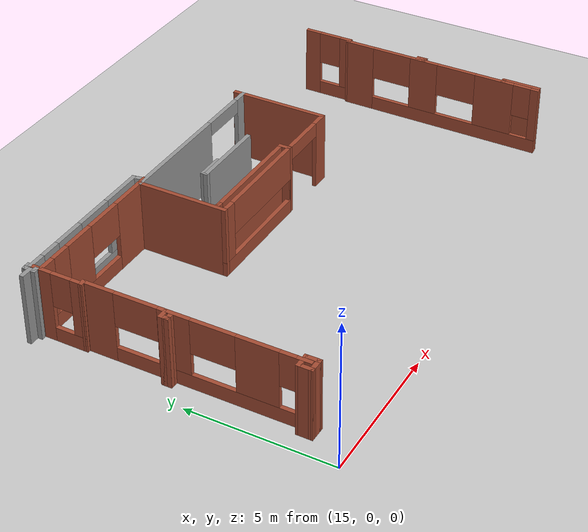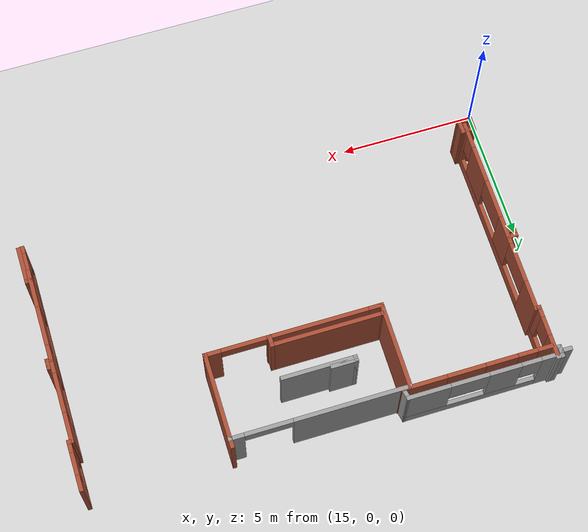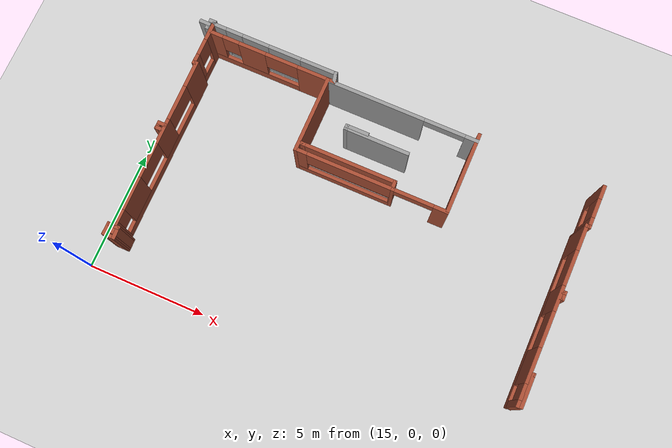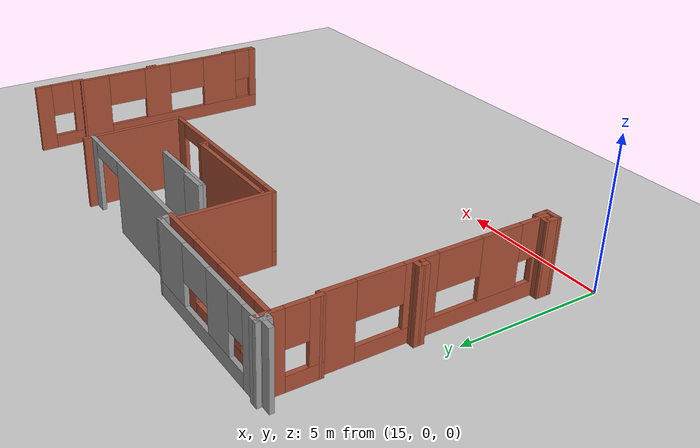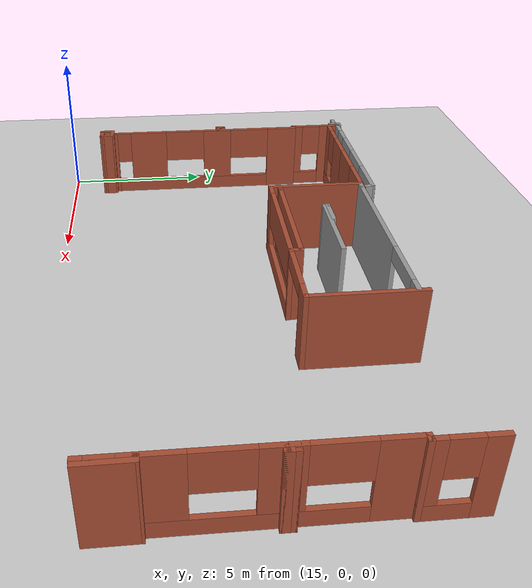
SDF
<sdf version="1.6">
 <world name="default">
  <model name="ground_plane">
   <static>1</static>
   <link name="link">
    <collision name="collision">
     <geometry><plane><normal>0 0 1</normal><size>100 100</size></plane></geometry>
     <surface><friction><ode><mu>100</mu><mu2>50</mu2></ode></friction></surface>
    </collision>
    <visual name="visual">
     <cast_shadows>0</cast_shadows>
     <geometry><plane><normal>0 0 1</normal><size>100 100</size></plane></geometry>
     <material>
      <script><uri>file://media/materials/scripts/gazebo.material</uri><name>Gazebo/Grey</name></script>
     </material>
    </visual>
   </link>
  </model>
  <model name="CVSSP">
   <pose>23.8714 24.094 0 0 -0 0</pose>
   <link name="Wall_179">
    <pose>8.65751 -14.4573 0 0 0 -1.5708</pose>
    <visual name="Wall_179_Visual_0">
     <pose>-0.628809 0 1.25 0 -0 0</pose>
     <geometry><box><size>0.582411 0.15 2.5</size></box></geometry>
     <material>
      <script><uri>file://media/materials/scripts/gazebo.material</uri><name>Gazebo/Bricks</name></script>
      <ambient>1 1 1 1</ambient>
     </material>
    </visual>
    <collision name="Wall_179_Collision_0">
     <geometry><box><size>0.582411 0.15 2.5</size></box></geometry>
     <pose>-0.628809 0 1.25 0 -0 0</pose>
    </collision>
    <visual name="Wall_179_Visual_1">
     <pose>0.291205 0 0.25 0 -0 0</pose>
     <geometry><box><size>1.25762 0.15 0.5</size></box></geometry>
     <material>
      <script><uri>file://media/materials/scripts/gazebo.material</uri><name>Gazebo/Bricks</name></script>
      <ambient>1 1 1 1</ambient>
     </material>
    </visual>
    <collision name="Wall_179_Collision_1">
     <geometry><box><size>1.25762 0.15 0.5</size></box></geometry>
     <pose>0.291205 0 0.25 0 -0 0</pose>
    </collision>
    <visual name="Wall_179_Visual_2">
     <pose>0.691205 0 1.5 0 -0 0</pose>
     <geometry><box><size>0.457619 0.15 2</size></box></geometry>
     <material>
      <script><uri>file://media/materials/scripts/gazebo.material</uri><name>Gazebo/Bricks</name></script>
      <ambient>1 1 1 1</ambient>
     </material>
    </visual>
    <collision name="Wall_179_Collision_2">
     <geometry><box><size>0.457619 0.15 2</size></box></geometry>
     <pose>0.691205 0 1.5 0 -0 0</pose>
    </collision>
    <visual name="Wall_179_Visual_3">
     <pose>0.062396 0 1.9 0 -0 0</pose>
     <geometry><box><size>0.8 0.15 1.2</size></box></geometry>
     <material>
      <script><uri>file://media/materials/scripts/gazebo.material</uri><name>Gazebo/Bricks</name></script>
      <ambient>1 1 1 1</ambient>
     </material>
    </visual>
    <collision name="Wall_179_Collision_3">
     <geometry><box><size>0.8 0.15 1.2</size></box></geometry>
     <pose>0.062396 0 1.9 0 -0 0</pose>
    </collision>
   </link>
   <link name="Wall_181">
    <collision name="Wall_181_Collision">
     <geometry><box><size>0.25 0.15 2.5</size></box></geometry>
     <pose>0 0 1.25 0 -0 0</pose>
    </collision>
    <visual name="Wall_181_Visual">
     <pose>0 0 1.25 0 -0 0</pose>
     <geometry><box><size>0.25 0.15 2.5</size></box></geometry>
     <material>
      <script><uri>file://media/materials/scripts/gazebo.material</uri><name>Gazebo/Bricks</name></script>
      <ambient>1 1 1 1</ambient>
     </material>
    </visual>
    <pose>8.60751 -15.3023 0 0 -0 3.14159</pose>
   </link>
   <link name="Wall_182">
    <pose>8.54751 -18.9623 0 0 0 -1.57353</pose>
    <visual name="Wall_182_Visual_0">
     <pose>-3.1752 0 1.25 0 -0 0</pose>
     <geometry><box><size>1.11963 0.15 2.5</size></box></geometry>
     <material>
      <script><uri>file://media/materials/scripts/gazebo.material</uri><name>Gazebo/Bricks</name></script>
      <ambient>1 1 1 1</ambient>
     </material>
    </visual>
    <collision name="Wall_182_Collision_0">
     <geometry><box><size>1.11963 0.15 2.5</size></box></geometry>
     <pose>-3.1752 0 1.25 0 -0 0</pose>
    </collision>
    <visual name="Wall_182_Visual_1">
     <pose>0.559815 0 0.25 0 -0 0</pose>
     <geometry><box><size>6.3504 0.15 0.5</size></box></geometry>
     <material>
      <script><uri>file://media/materials/scripts/gazebo.material</uri><name>Gazebo/Bricks</name></script>
      <ambient>1 1 1 1</ambient>
     </material>
    </visual>
    <collision name="Wall_182_Collision_1">
     <geometry><box><size>6.3504 0.15 0.5</size></box></geometry>
     <pose>0.559815 0 0.25 0 -0 0</pose>
    </collision>
    <visual name="Wall_182_Visual_2">
     <pose>-0.626161 0 1.5 0 -0 0</pose>
     <geometry><box><size>1.05351 0.15 2</size></box></geometry>
     <material>
      <script><uri>file://media/materials/scripts/gazebo.material</uri><name>Gazebo/Bricks</name></script>
      <ambient>1 1 1 1</ambient>
     </material>
    </visual>
    <collision name="Wall_182_Collision_2">
     <geometry><box><size>1.05351 0.15 2</size></box></geometry>
     <pose>-0.626161 0 1.5 0 -0 0</pose>
    </collision>
    <visual name="Wall_182_Visual_3">
     <pose>2.08039 0 1.5 0 -0 0</pose>
     <geometry><box><size>1.44149 0.15 2</size></box></geometry>
     <material>
      <script><uri>file://media/materials/scripts/gazebo.material</uri><name>Gazebo/Bricks</name></script>
      <ambient>1 1 1 1</ambient>
     </material>
    </visual>
    <collision name="Wall_182_Collision_3">
     <geometry><box><size>1.44149 0.15 2</size></box></geometry>
     <pose>2.08039 0 1.5 0 -0 0</pose>
    </collision>
    <visual name="Wall_182_Visual_4">
     <pose>3.58898 0 1.5 0 -0 0</pose>
     <geometry><box><size>0.292074 0.15 2</size></box></geometry>
     <material>
      <script><uri>file://media/materials/scripts/gazebo.material</uri><name>Gazebo/Bricks</name></script>
      <ambient>1 1 1 1</ambient>
     </material>
    </visual>
    <collision name="Wall_182_Collision_4">
     <geometry><box><size>0.292074 0.15 2</size></box></geometry>
     <pose>3.58898 0 1.5 0 -0 0</pose>
    </collision>
    <visual name="Wall_182_Visual_5">
     <pose>-1.88415 0 1.9 0 -0 0</pose>
     <geometry><box><size>1.46246 0.15 1.2</size></box></geometry>
     <material>
      <script><uri>file://media/materials/scripts/gazebo.material</uri><name>Gazebo/Bricks</name></script>
      <ambient>1 1 1 1</ambient>
     </material>
    </visual>
    <collision name="Wall_182_Collision_5">
     <geometry><box><size>1.46246 0.15 1.2</size></box></geometry>
     <pose>-1.88415 0 1.9 0 -0 0</pose>
    </collision>
    <visual name="Wall_182_Visual_6">
     <pose>0.63012 0 1.9 0 -0 0</pose>
     <geometry><box><size>1.45905 0.15 1.2</size></box></geometry>
     <material>
      <script><uri>file://media/materials/scripts/gazebo.material</uri><name>Gazebo/Bricks</name></script>
      <ambient>1 1 1 1</ambient>
     </material>
    </visual>
    <collision name="Wall_182_Collision_6">
     <geometry><box><size>1.45905 0.15 1.2</size></box></geometry>
     <pose>0.63012 0 1.9 0 -0 0</pose>
    </collision>
    <visual name="Wall_182_Visual_7">
     <pose>3.12204 0 1.9 0 -0 0</pose>
     <geometry><box><size>0.641802 0.15 1.2</size></box></geometry>
     <material>
      <script><uri>file://media/materials/scripts/gazebo.material</uri><name>Gazebo/Bricks</name></script>
      <ambient>1 1 1 1</ambient>
     </material>
    </visual>
    <collision name="Wall_182_Collision_7">
     <geometry><box><size>0.641802 0.15 1.2</size></box></geometry>
     <pose>3.12204 0 1.9 0 -0 0</pose>
    </collision>
   </link>
   <link name="Wall_191">
    <collision name="Wall_191_Collision">
     <geometry><box><size>0.25 0.15 2.5</size></box></geometry>
     <pose>0 0 1.25 0 -0 0</pose>
    </collision>
    <visual name="Wall_191_Visual">
     <pose>0 0 1.25 0 -0 0</pose>
     <geometry><box><size>0.25 0.15 2.5</size></box></geometry>
     <material>
      <script><uri>file://media/materials/scripts/gazebo.material</uri><name>Gazebo/Bricks</name></script>
      <ambient>1 1 1 1</ambient>
     </material>
    </visual>
    <pose>8.62063 -21.3528 0 0 -0 0</pose>
   </link>
   <link name="Wall_192">
    <collision name="Wall_192_Collision">
     <geometry><box><size>1.40351 0.15 2.5</size></box></geometry>
     <pose>0 0 1.25 0 -0 0</pose>
    </collision>
    <visual name="Wall_192_Visual">
     <pose>0 0 1.25 0 -0 0</pose>
     <geometry><box><size>1.40351 0.15 2.5</size></box></geometry>
     <material>
      <script><uri>file://media/materials/scripts/gazebo.material</uri><name>Gazebo/Bricks</name></script>
      <ambient>1 1 1 1</ambient>
     </material>
    </visual>
    <pose>8.67238 -21.9795 0 0 0 -1.568</pose>
   </link>
   <link name="Wall_505">
    <collision name="Wall_505_Collision">
     <geometry><box><size>3.5 0.15 2.5</size></box></geometry>
     <pose>0 0 1.25 0 -0 0</pose>
    </collision>
    <visual name="Wall_505_Visual">
     <pose>0 0 1.25 0 -0 0</pose>
     <geometry><box><size>3.5 0.15 2.5</size></box></geometry>
     <material>
      <script><uri>file://media/materials/scripts/gazebo.material</uri><name>Gazebo/Bricks</name></script>
      <ambient>1 1 1 1</ambient>
     </material>
    </visual>
    <pose>3.47947 -15.2523 0 0 0 -1.5708</pose>
   </link>
   <link name="Wall_506">
    <pose>0.304469 -16.9273 0 0 -0 3.14159</pose>
    <visual name="Wall_506_Visual_0">
     <pose>-2.93094 0 1.25 0 -0 0</pose>
     <geometry><box><size>0.638116 0.15 2.5</size></box></geometry>
     <material>
      <script><uri>file://media/materials/scripts/gazebo.material</uri><name>Gazebo/Bricks</name></script>
      <ambient>1 1 1 1</ambient>
     </material>
    </visual>
    <collision name="Wall_506_Collision_0">
     <geometry><box><size>0.638116 0.15 2.5</size></box></geometry>
     <pose>-2.93094 0 1.25 0 -0 0</pose>
    </collision>
    <visual name="Wall_506_Visual_1">
     <pose>-0.912696 0 1.25 0 -0 0</pose>
     <geometry><box><size>0.137507 0.15 2.5</size></box></geometry>
     <material>
      <script><uri>file://media/materials/scripts/gazebo.material</uri><name>Gazebo/Bricks</name></script>
      <ambient>1 1 1 1</ambient>
     </material>
    </visual>
    <collision name="Wall_506_Collision_1">
     <geometry><box><size>0.137507 0.15 2.5</size></box></geometry>
     <pose>-0.912696 0 1.25 0 -0 0</pose>
    </collision>
    <visual name="Wall_506_Visual_2">
     <pose>1.20303 0 0.25 0 -0 0</pose>
     <geometry><box><size>4.09394 0.15 0.5</size></box></geometry>
     <material>
      <script><uri>file://media/materials/scripts/gazebo.material</uri><name>Gazebo/Bricks</name></script>
      <ambient>1 1 1 1</ambient>
     </material>
    </visual>
    <collision name="Wall_506_Collision_2">
     <geometry><box><size>4.09394 0.15 0.5</size></box></geometry>
     <pose>1.20303 0 0.25 0 -0 0</pose>
    </collision>
    <visual name="Wall_506_Visual_3">
     <pose>2.97461 0 1.5 0 -0 0</pose>
     <geometry><box><size>0.550785 0.15 2</size></box></geometry>
     <material>
      <script><uri>file://media/materials/scripts/gazebo.material</uri><name>Gazebo/Bricks</name></script>
      <ambient>1 1 1 1</ambient>
     </material>
    </visual>
    <collision name="Wall_506_Collision_3">
     <geometry><box><size>0.550785 0.15 2</size></box></geometry>
     <pose>2.97461 0 1.5 0 -0 0</pose>
    </collision>
    <visual name="Wall_506_Visual_4">
     <pose>0.927636 0 1.9 0 -0 0</pose>
     <geometry><box><size>3.54316 0.15 1.2</size></box></geometry>
     <material>
      <script><uri>file://media/materials/scripts/gazebo.material</uri><name>Gazebo/Bricks</name></script>
      <ambient>1 1 1 1</ambient>
     </material>
    </visual>
    <collision name="Wall_506_Collision_4">
     <geometry><box><size>3.54316 0.15 1.2</size></box></geometry>
     <pose>0.927636 0 1.9 0 -0 0</pose>
    </collision>
    <visual name="Wall_506_Visual_5">
     <pose>-1.79667 0 2.25 0 -0 0</pose>
     <geometry><box><size>1.63044 0.15 0.5</size></box></geometry>
     <material>
      <script><uri>file://media/materials/scripts/gazebo.material</uri><name>Gazebo/Bricks</name></script>
      <ambient>1 1 1 1</ambient>
     </material>
    </visual>
    <collision name="Wall_506_Collision_5">
     <geometry><box><size>1.63044 0.15 0.5</size></box></geometry>
     <pose>-1.79667 0 2.25 0 -0 0</pose>
    </collision>
   </link>
   <link name="Wall_507">
    <collision name="Wall_507_Collision">
     <geometry><box><size>3.25 0.15 2.5</size></box></geometry>
     <pose>0 0 1.25 0 -0 0</pose>
    </collision>
    <visual name="Wall_507_Visual">
     <pose>0 0 1.25 0 -0 0</pose>
     <geometry><box><size>3.25 0.15 2.5</size></box></geometry>
     <material>
      <script><uri>file://media/materials/scripts/gazebo.material</uri><name>Gazebo/Bricks</name></script>
      <ambient>1 1 1 1</ambient>
     </material>
    </visual>
    <pose>-2.87053 -15.3773 0 0 -0 1.5708</pose>
   </link>
   <link name="Wall_508">
    <pose>0.304469 -13.8405 0 0 -0 0</pose>
    <visual name="Wall_508_Visual_0">
     <pose>-1.14297 0 1.25 0 -0 0</pose>
     <geometry><box><size>4.21406 0.15 2.5</size></box></geometry>
     <material>
      <script><uri>file://media/materials/scripts/gazebo.material</uri><name>Gazebo/Grey</name></script>
      <ambient>0.588235 0.588235 0.588235 1</ambient>
     </material>
    </visual>
    <collision name="Wall_508_Collision_0">
     <geometry><box><size>4.21406 0.15 2.5</size></box></geometry>
     <pose>-1.14297 0 1.25 0 -0 0</pose>
    </collision>
    <visual name="Wall_508_Visual_1">
     <pose>2.96572 0 1.25 0 -0 0</pose>
     <geometry><box><size>0.56855 0.15 2.5</size></box></geometry>
     <material>
      <script><uri>file://media/materials/scripts/gazebo.material</uri><name>Gazebo/Grey</name></script>
      <ambient>0.588235 0.588235 0.588235 1</ambient>
     </material>
    </visual>
    <collision name="Wall_508_Collision_1">
     <geometry><box><size>0.56855 0.15 2.5</size></box></geometry>
     <pose>2.96572 0 1.25 0 -0 0</pose>
    </collision>
    <visual name="Wall_508_Visual_2">
     <pose>1.82275 0 2.25 0 -0 0</pose>
     <geometry><box><size>1.71739 0.15 0.5</size></box></geometry>
     <material>
      <script><uri>file://media/materials/scripts/gazebo.material</uri><name>Gazebo/Grey</name></script>
      <ambient>0.588235 0.588235 0.588235 1</ambient>
     </material>
    </visual>
    <collision name="Wall_508_Collision_2">
     <geometry><box><size>1.71739 0.15 0.5</size></box></geometry>
     <pose>1.82275 0 2.25 0 -0 0</pose>
    </collision>
   </link>
   <link name="Wall_538">
    <pose>-5.361 -13.4582 0 0 -0 0</pose>
    <visual name="Wall_538_Visual_0">
     <pose>-2.43267 0 1.25 0 -0 0</pose>
     <geometry><box><size>0.634665 0.15 2.5</size></box></geometry>
     <material>
      <script><uri>file://media/materials/scripts/gazebo.material</uri><name>Gazebo/Grey</name></script>
      <ambient>0.588235 0.588235 0.588235 1</ambient>
     </material>
    </visual>
    <collision name="Wall_538_Collision_0">
     <geometry><box><size>0.634665 0.15 2.5</size></box></geometry>
     <pose>-2.43267 0 1.25 0 -0 0</pose>
    </collision>
    <visual name="Wall_538_Visual_1">
     <pose>0.317332 0 0.25 0 -0 0</pose>
     <geometry><box><size>4.86533 0.15 0.5</size></box></geometry>
     <material>
      <script><uri>file://media/materials/scripts/gazebo.material</uri><name>Gazebo/Grey</name></script>
      <ambient>0.588235 0.588235 0.588235 1</ambient>
     </material>
    </visual>
    <collision name="Wall_538_Collision_1">
     <geometry><box><size>4.86533 0.15 0.5</size></box></geometry>
     <pose>0.317332 0 0.25 0 -0 0</pose>
    </collision>
    <visual name="Wall_538_Visual_2">
     <pose>-0.810818 0 1.5 0 -0 0</pose>
     <geometry><box><size>1.15893 0.15 2</size></box></geometry>
     <material>
      <script><uri>file://media/materials/scripts/gazebo.material</uri><name>Gazebo/Grey</name></script>
      <ambient>0.588235 0.588235 0.588235 1</ambient>
     </material>
    </visual>
    <collision name="Wall_538_Collision_2">
     <geometry><box><size>1.15893 0.15 2</size></box></geometry>
     <pose>-0.810818 0 1.5 0 -0 0</pose>
    </collision>
    <visual name="Wall_538_Visual_3">
     <pose>1.95518 0 1.5 0 -0 0</pose>
     <geometry><box><size>1.58965 0.15 2</size></box></geometry>
     <material>
      <script><uri>file://media/materials/scripts/gazebo.material</uri><name>Gazebo/Grey</name></script>
      <ambient>0.588235 0.588235 0.588235 1</ambient>
     </material>
    </visual>
    <collision name="Wall_538_Collision_3">
     <geometry><box><size>1.58965 0.15 2</size></box></geometry>
     <pose>1.95518 0 1.5 0 -0 0</pose>
    </collision>
    <visual name="Wall_538_Visual_4">
     <pose>-1.75281 0 1.9 0 -0 0</pose>
     <geometry><box><size>0.72505 0.15 1.2</size></box></geometry>
     <material>
      <script><uri>file://media/materials/scripts/gazebo.material</uri><name>Gazebo/Grey</name></script>
      <ambient>0.588235 0.588235 0.588235 1</ambient>
     </material>
    </visual>
    <collision name="Wall_538_Collision_4">
     <geometry><box><size>0.72505 0.15 1.2</size></box></geometry>
     <pose>-1.75281 0 1.9 0 -0 0</pose>
    </collision>
    <visual name="Wall_538_Visual_5">
     <pose>0.4645 0 1.9 0 -0 0</pose>
     <geometry><box><size>1.3917 0.15 1.2</size></box></geometry>
     <material>
      <script><uri>file://media/materials/scripts/gazebo.material</uri><name>Gazebo/Grey</name></script>
      <ambient>0.588235 0.588235 0.588235 1</ambient>
     </material>
    </visual>
    <collision name="Wall_538_Collision_5">
     <geometry><box><size>1.3917 0.15 1.2</size></box></geometry>
     <pose>0.4645 0 1.9 0 -0 0</pose>
    </collision>
   </link>
   <link name="Wall_539">
    <collision name="Wall_539_Collision">
     <geometry><box><size>0.505851 0.15 2.5</size></box></geometry>
     <pose>0 0 1.25 0 -0 0</pose>
    </collision>
    <visual name="Wall_539_Visual">
     <pose>0 0 1.25 0 -0 0</pose>
     <geometry><box><size>0.505851 0.15 2.5</size></box></geometry>
     <material>
      <script><uri>file://media/materials/scripts/gazebo.material</uri><name>Gazebo/Grey</name></script>
      <ambient>1 1 1 1</ambient>
     </material>
    </visual>
    <pose>-2.64978 -13.6324 0 0 0 -1.3658</pose>
   </link>
   <link name="Wall_541">
    <pose>-8.03948 -14.3557 0 0 0 -1.57468</pose>
    <visual name="Wall_541_Visual_0">
     <pose>-0.567331 0 1.25 0 -0 0</pose>
     <geometry><box><size>0.810426 0.15 2.5</size></box></geometry>
     <material>
      <script><uri>file://media/materials/scripts/gazebo.material</uri><name>Gazebo/Bricks</name></script>
      <ambient>1 1 1 1</ambient>
     </material>
    </visual>
    <collision name="Wall_541_Collision_0">
     <geometry><box><size>0.810426 0.15 2.5</size></box></geometry>
     <pose>-0.567331 0 1.25 0 -0 0</pose>
    </collision>
    <visual name="Wall_541_Visual_1">
     <pose>0.405213 0 0.25 0 -0 0</pose>
     <geometry><box><size>1.13466 0.15 0.5</size></box></geometry>
     <material>
      <script><uri>file://media/materials/scripts/gazebo.material</uri><name>Gazebo/Bricks</name></script>
      <ambient>1 1 1 1</ambient>
     </material>
    </visual>
    <collision name="Wall_541_Collision_1">
     <geometry><box><size>1.13466 0.15 0.5</size></box></geometry>
     <pose>0.405213 0 0.25 0 -0 0</pose>
    </collision>
    <visual name="Wall_541_Visual_2">
     <pose>0.750947 0 1.5 0 -0 0</pose>
     <geometry><box><size>0.443194 0.15 2</size></box></geometry>
     <material>
      <script><uri>file://media/materials/scripts/gazebo.material</uri><name>Gazebo/Bricks</name></script>
      <ambient>1 1 1 1</ambient>
     </material>
    </visual>
    <collision name="Wall_541_Collision_2">
     <geometry><box><size>0.443194 0.15 2</size></box></geometry>
     <pose>0.750947 0 1.5 0 -0 0</pose>
    </collision>
    <visual name="Wall_541_Visual_3">
     <pose>0.183616 0 1.9 0 -0 0</pose>
     <geometry><box><size>0.691468 0.15 1.2</size></box></geometry>
     <material>
      <script><uri>file://media/materials/scripts/gazebo.material</uri><name>Gazebo/Bricks</name></script>
      <ambient>1 1 1 1</ambient>
     </material>
    </visual>
    <collision name="Wall_541_Collision_3">
     <geometry><box><size>0.691468 0.15 1.2</size></box></geometry>
     <pose>0.183616 0 1.9 0 -0 0</pose>
    </collision>
   </link>
   <link name="Wall_542">
    <collision name="Wall_542_Collision">
     <geometry><box><size>0.25 0.15 2.5</size></box></geometry>
     <pose>0 0 1.25 0 -0 0</pose>
    </collision>
    <visual name="Wall_542_Visual">
     <pose>0 0 1.25 0 -0 0</pose>
     <geometry><box><size>0.25 0.15 2.5</size></box></geometry>
     <material>
      <script><uri>file://media/materials/scripts/gazebo.material</uri><name>Gazebo/Bricks</name></script>
      <ambient>1 1 1 1</ambient>
     </material>
    </visual>
    <pose>-7.99297 -15.2533 0 0 -0 0</pose>
   </link>
   <link name="Wall_543">
    <pose>-7.94297 -18.8033 0 0 0 -1.5708</pose>
    <visual name="Wall_543_Visual_0">
     <pose>-3.05686 0 1.25 0 -0 0</pose>
     <geometry><box><size>1.13628 0.15 2.5</size></box></geometry>
     <material>
      <script><uri>file://media/materials/scripts/gazebo.material</uri><name>Gazebo/Bricks</name></script>
      <ambient>1 1 1 1</ambient>
     </material>
    </visual>
    <collision name="Wall_543_Collision_0">
     <geometry><box><size>1.13628 0.15 2.5</size></box></geometry>
     <pose>-3.05686 0 1.25 0 -0 0</pose>
    </collision>
    <visual name="Wall_543_Visual_1">
     <pose>0.568139 0 0.25 0 -0 0</pose>
     <geometry><box><size>6.11372 0.15 0.5</size></box></geometry>
     <material>
      <script><uri>file://media/materials/scripts/gazebo.material</uri><name>Gazebo/Bricks</name></script>
      <ambient>1 1 1 1</ambient>
     </material>
    </visual>
    <collision name="Wall_543_Collision_1">
     <geometry><box><size>6.11372 0.15 0.5</size></box></geometry>
     <pose>0.568139 0 0.25 0 -0 0</pose>
    </collision>
    <visual name="Wall_543_Visual_2">
     <pose>-0.462946 0 1.5 0 -0 0</pose>
     <geometry><box><size>1.07655 0.15 2</size></box></geometry>
     <material>
      <script><uri>file://media/materials/scripts/gazebo.material</uri><name>Gazebo/Bricks</name></script>
      <ambient>1 1 1 1</ambient>
     </material>
    </visual>
    <collision name="Wall_543_Collision_2">
     <geometry><box><size>1.07655 0.15 2</size></box></geometry>
     <pose>-0.462946 0 1.5 0 -0 0</pose>
    </collision>
    <visual name="Wall_543_Visual_3">
     <pose>2.25573 0 1.5 0 -0 0</pose>
     <geometry><box><size>1.39706 0.15 2</size></box></geometry>
     <material>
      <script><uri>file://media/materials/scripts/gazebo.material</uri><name>Gazebo/Bricks</name></script>
      <ambient>1 1 1 1</ambient>
     </material>
    </visual>
    <collision name="Wall_543_Collision_3">
     <geometry><box><size>1.39706 0.15 2</size></box></geometry>
     <pose>2.25573 0 1.5 0 -0 0</pose>
    </collision>
    <visual name="Wall_543_Visual_4">
     <pose>2.25573 0 1.5 0 -0 0</pose>
     <geometry><box><size>1.39706 0.15 2</size></box></geometry>
     <material>
      <script><uri>file://media/materials/scripts/gazebo.material</uri><name>Gazebo/Bricks</name></script>
      <ambient>1 1 1 1</ambient>
     </material>
    </visual>
    <collision name="Wall_543_Collision_4">
     <geometry><box><size>1.39706 0.15 2</size></box></geometry>
     <pose>2.25573 0 1.5 0 -0 0</pose>
    </collision>
    <visual name="Wall_543_Visual_5">
     <pose>-1.74497 0 1.9 0 -0 0</pose>
     <geometry><box><size>1.4875 0.15 1.2</size></box></geometry>
     <material>
      <script><uri>file://media/materials/scripts/gazebo.material</uri><name>Gazebo/Bricks</name></script>
      <ambient>1 1 1 1</ambient>
     </material>
    </visual>
    <collision name="Wall_543_Collision_5">
     <geometry><box><size>1.4875 0.15 1.2</size></box></geometry>
     <pose>-1.74497 0 1.9 0 -0 0</pose>
    </collision>
    <visual name="Wall_543_Visual_6">
     <pose>0.816261 0 1.9 0 -0 0</pose>
     <geometry><box><size>1.48187 0.15 1.2</size></box></geometry>
     <material>
      <script><uri>file://media/materials/scripts/gazebo.material</uri><name>Gazebo/Bricks</name></script>
      <ambient>1 1 1 1</ambient>
     </material>
    </visual>
    <collision name="Wall_543_Collision_6">
     <geometry><box><size>1.48187 0.15 1.2</size></box></geometry>
     <pose>0.816261 0 1.9 0 -0 0</pose>
    </collision>
    <visual name="Wall_543_Visual_7">
     <pose>3.28963 0 1.9 0 -0 0</pose>
     <geometry><box><size>0.670742 0.15 1.2</size></box></geometry>
     <material>
      <script><uri>file://media/materials/scripts/gazebo.material</uri><name>Gazebo/Bricks</name></script>
      <ambient>1 1 1 1</ambient>
     </material>
    </visual>
    <collision name="Wall_543_Collision_7">
     <geometry><box><size>0.670742 0.15 1.2</size></box></geometry>
     <pose>3.28963 0 1.9 0 -0 0</pose>
    </collision>
    <visual name="Wall_543_Visual_8">
     <pose>3.28963 0 1.9 0 -0 0</pose>
     <geometry><box><size>0.670742 0.15 1.2</size></box></geometry>
     <material>
      <script><uri>file://media/materials/scripts/gazebo.material</uri><name>Gazebo/Bricks</name></script>
      <ambient>1 1 1 1</ambient>
     </material>
    </visual>
    <collision name="Wall_543_Collision_8">
     <geometry><box><size>0.670742 0.15 1.2</size></box></geometry>
     <pose>3.28963 0 1.9 0 -0 0</pose>
    </collision>
   </link>
   <link name="Wall_544">
    <collision name="Wall_544_Collision">
     <geometry><box><size>0.5 0.15 2.5</size></box></geometry>
     <pose>0 0 1.25 0 -0 0</pose>
    </collision>
    <visual name="Wall_544_Visual">
     <pose>0 0 1.25 0 -0 0</pose>
     <geometry><box><size>0.5 0.15 2.5</size></box></geometry>
     <material>
      <script><uri>file://media/materials/scripts/gazebo.material</uri><name>Gazebo/Bricks</name></script>
      <ambient>1 1 1 1</ambient>
     </material>
    </visual>
    <pose>-7.94297 -22.5283 0 0 0 -1.5708</pose>
   </link>
   <link name="Wall_569">
    <collision name="Wall_569_Collision">
     <geometry><box><size>0.476583 0.15 2.5</size></box></geometry>
     <pose>0 0 1.25 0 -0 0</pose>
    </collision>
    <visual name="Wall_569_Visual">
     <pose>0 0 1.25 0 -0 0</pose>
     <geometry><box><size>0.476583 0.15 2.5</size></box></geometry>
     <material>
      <script><uri>file://media/materials/scripts/gazebo.material</uri><name>Gazebo/Grey</name></script>
      <ambient>1 1 1 1</ambient>
     </material>
    </visual>
    <pose>-8.37248 -13.54 0 0 0 -0.014239</pose>
   </link>
   <link name="Wall_570">
    <collision name="Wall_570_Collision">
     <geometry><box><size>0.307067 0.15 2.5</size></box></geometry>
     <pose>0 0 1.25 0 -0 0</pose>
    </collision>
    <visual name="Wall_570_Visual">
     <pose>0 0 1.25 0 -0 0</pose>
     <geometry><box><size>0.307067 0.15 2.5</size></box></geometry>
     <material>
      <script><uri>file://media/materials/scripts/gazebo.material</uri><name>Gazebo/Grey</name></script>
      <ambient>1 1 1 1</ambient>
     </material>
    </visual>
    <pose>-8.20921 -13.6208 0 0 0 -1.5708</pose>
   </link>
   <link name="Wall_571">
    <collision name="Wall_571_Collision">
     <geometry><box><size>0.25 0.15 2.5</size></box></geometry>
     <pose>0 0 1.25 0 -0 0</pose>
    </collision>
    <visual name="Wall_571_Visual">
     <pose>0 0 1.25 0 -0 0</pose>
     <geometry><box><size>0.25 0.15 2.5</size></box></geometry>
     <material>
      <script><uri>file://media/materials/scripts/gazebo.material</uri><name>Gazebo/Grey</name></script>
      <ambient>1 1 1 1</ambient>
     </material>
    </visual>
    <pose>-8.15921 -13.695 0 0 -0 0</pose>
   </link>
   <link name="Wall_575">
    <collision name="Wall_575_Collision">
     <geometry><box><size>0.275673 0.15 2.5</size></box></geometry>
     <pose>0 0 1.25 0 -0 0</pose>
    </collision>
    <visual name="Wall_575_Visual">
     <pose>0 0 1.25 0 -0 0</pose>
     <geometry><box><size>0.275673 0.15 2.5</size></box></geometry>
     <material>
      <script><uri>file://media/materials/scripts/gazebo.material</uri><name>Gazebo/Grey</name></script>
      <ambient>1 1 1 1</ambient>
     </material>
    </visual>
    <pose>-8.20032 -13.4387 0 0 -0 1.5708</pose>
   </link>
   <link name="Wall_576">
    <collision name="Wall_576_Collision">
     <geometry><box><size>0.309961 0.15 2.5</size></box></geometry>
     <pose>0 0 1.25 0 -0 0</pose>
    </collision>
    <visual name="Wall_576_Visual">
     <pose>0 0 1.25 0 -0 0</pose>
     <geometry><box><size>0.309961 0.15 2.5</size></box></geometry>
     <material>
      <script><uri>file://media/materials/scripts/gazebo.material</uri><name>Gazebo/Grey</name></script>
      <ambient>1 1 1 1</ambient>
     </material>
    </visual>
    <pose>-8.12034 -13.3761 0 0 -0 0</pose>
   </link>
   <link name="Wall_596">
    <collision name="Wall_596_Collision">
     <geometry><box><size>4 0.15 2.5</size></box></geometry>
     <pose>0 0 1.25 0 -0 0</pose>
    </collision>
    <visual name="Wall_596_Visual">
     <pose>0 0 1.25 0 -0 0</pose>
     <geometry><box><size>4 0.15 2.5</size></box></geometry>
     <material>
      <script><uri>file://media/materials/scripts/gazebo.material</uri><name>Gazebo/Bricks</name></script>
      <ambient>1 1 1 1</ambient>
     </material>
    </visual>
    <pose>-0.740764 -16.6286 0 0 -0 0</pose>
   </link>
   <link name="Wall_598">
    <collision name="Wall_598_Collision">
     <geometry><box><size>0.429619 0.15 2.5</size></box></geometry>
     <pose>0 0 1.25 0 -0 0</pose>
    </collision>
    <visual name="Wall_598_Visual">
     <pose>0 0 1.25 0 -0 0</pose>
     <geometry><box><size>0.429619 0.15 2.5</size></box></geometry>
     <material>
      <script><uri>file://media/materials/scripts/gazebo.material</uri><name>Gazebo/Bricks</name></script>
      <ambient>1 1 1 1</ambient>
     </material>
    </visual>
    <pose>1.18424 -16.7682 0 0 0 -1.5708</pose>
   </link>
   <link name="Wall_600">
    <collision name="Wall_600_Collision">
     <geometry><box><size>2.75 0.15 2.5</size></box></geometry>
     <pose>0 0 1.25 0 -0 0</pose>
    </collision>
    <visual name="Wall_600_Visual">
     <pose>0 0 1.25 0 -0 0</pose>
     <geometry><box><size>2.75 0.15 2.5</size></box></geometry>
     <material>
      <script><uri>file://media/materials/scripts/gazebo.material</uri><name>Gazebo/Grey</name></script>
      <ambient>0.588235 0.588235 0.588235 1</ambient>
     </material>
    </visual>
    <pose>-0.115764 -15.3784 0 0 -0 3.14159</pose>
   </link>
   <link name="Wall_601">
    <collision name="Wall_601_Collision">
     <geometry><box><size>0.25 0.15 2.5</size></box></geometry>
     <pose>0 0 1.25 0 -0 0</pose>
    </collision>
    <visual name="Wall_601_Visual">
     <pose>0 0 1.25 0 -0 0</pose>
     <geometry><box><size>0.25 0.15 2.5</size></box></geometry>
     <material>
      <script><uri>file://media/materials/scripts/gazebo.material</uri><name>Gazebo/Grey</name></script>
      <ambient>1 1 1 1</ambient>
     </material>
    </visual>
    <pose>-1.41576 -15.3284 0 0 -0 1.5708</pose>
   </link>
   <link name="Wall_602">
    <collision name="Wall_602_Collision">
     <geometry><box><size>1 0.15 2.5</size></box></geometry>
     <pose>0 0 1.25 0 -0 0</pose>
    </collision>
    <visual name="Wall_602_Visual">
     <pose>0 0 1.25 0 -0 0</pose>
     <geometry><box><size>1 0.15 2.5</size></box></geometry>
     <material>
      <script><uri>file://media/materials/scripts/gazebo.material</uri><name>Gazebo/Grey</name></script>
      <ambient>0.588235 0.588235 0.588235 1</ambient>
     </material>
    </visual>
    <pose>-0.990764 -15.2784 0 0 -0 0</pose>
   </link>
   <link name="Wall_768">
    <collision name="Wall_768_Collision">
     <geometry><box><size>0.25 0.15 2.5</size></box></geometry>
     <pose>0 0 1.25 0 -0 0</pose>
    </collision>
    <visual name="Wall_768_Visual">
     <pose>0 0 1.25 0 -0 0</pose>
     <geometry><box><size>0.25 0.15 2.5</size></box></geometry>
     <material>
      <script><uri>file://media/materials/scripts/gazebo.material</uri><name>Gazebo/Bricks</name></script>
      <ambient>1 1 1 1</ambient>
     </material>
    </visual>
    <pose>8.63163 -18.0542 0 0 -0 0</pose>
   </link>
   <link name="Wall_769">
    <collision name="Wall_769_Collision">
     <geometry><box><size>0.397826 0.15 2.5</size></box></geometry>
     <pose>0 0 1.25 0 -0 0</pose>
    </collision>
    <visual name="Wall_769_Visual">
     <pose>0 0 1.25 0 -0 0</pose>
     <geometry><box><size>0.397826 0.15 2.5</size></box></geometry>
     <material>
      <script><uri>file://media/materials/scripts/gazebo.material</uri><name>Gazebo/Bricks</name></script>
      <ambient>1 1 1 1</ambient>
     </material>
    </visual>
    <pose>8.68163 -18.1781 0 0 0 -1.5708</pose>
   </link>
   <link name="Wall_770">
    <collision name="Wall_770_Collision">
     <geometry><box><size>0.25 0.15 2.5</size></box></geometry>
     <pose>0 0 1.25 0 -0 0</pose>
    </collision>
    <visual name="Wall_770_Visual">
     <pose>0 0 1.25 0 -0 0</pose>
     <geometry><box><size>0.25 0.15 2.5</size></box></geometry>
     <material>
      <script><uri>file://media/materials/scripts/gazebo.material</uri><name>Gazebo/Bricks</name></script>
      <ambient>1 1 1 1</ambient>
     </material>
    </visual>
    <pose>8.63163 -18.302 0 0 -0 3.14159</pose>
   </link>
   <link name="Wall_819">
    <collision name="Wall_819_Collision">
     <geometry><box><size>0.25 0.15 2.5</size></box></geometry>
     <pose>0 0 1.25 0 -0 0</pose>
    </collision>
    <visual name="Wall_819_Visual">
     <pose>0 0 1.25 0 -0 0</pose>
     <geometry><box><size>0.25 0.15 2.5</size></box></geometry>
     <material>
      <script><uri>file://media/materials/scripts/gazebo.material</uri><name>Gazebo/Bricks</name></script>
      <ambient>1 1 1 1</ambient>
     </material>
    </visual>
    <pose>-2.71576 -16.6286 0 0 -0 3.14159</pose>
   </link>
   <link name="Wall_821">
    <pose>-5.27357 -13.8066 0 0 -0 3.14159</pose>
    <visual name="Wall_821_Visual_0">
     <pose>-1.9171 0 1.25 0 -0 0</pose>
     <geometry><box><size>1.66581 0.15 2.5</size></box></geometry>
     <material>
      <script><uri>file://media/materials/scripts/gazebo.material</uri><name>Gazebo/Bricks</name></script>
      <ambient>1 1 1 1</ambient>
     </material>
    </visual>
    <collision name="Wall_821_Collision_0">
     <geometry><box><size>1.66581 0.15 2.5</size></box></geometry>
     <pose>-1.9171 0 1.25 0 -0 0</pose>
    </collision>
    <visual name="Wall_821_Visual_1">
     <pose>0.832904 0 0.25 0 -0 0</pose>
     <geometry><box><size>3.83419 0.15 0.5</size></box></geometry>
     <material>
      <script><uri>file://media/materials/scripts/gazebo.material</uri><name>Gazebo/Bricks</name></script>
      <ambient>1 1 1 1</ambient>
     </material>
    </visual>
    <collision name="Wall_821_Collision_1">
     <geometry><box><size>3.83419 0.15 0.5</size></box></geometry>
     <pose>0.832904 0 0.25 0 -0 0</pose>
    </collision>
    <visual name="Wall_821_Visual_2">
     <pose>0.892612 0 1.5 0 -0 0</pose>
     <geometry><box><size>1.1702 0.15 2</size></box></geometry>
     <material>
      <script><uri>file://media/materials/scripts/gazebo.material</uri><name>Gazebo/Bricks</name></script>
      <ambient>1 1 1 1</ambient>
     </material>
    </visual>
    <collision name="Wall_821_Collision_2">
     <geometry><box><size>1.1702 0.15 2</size></box></geometry>
     <pose>0.892612 0 1.5 0 -0 0</pose>
    </collision>
    <visual name="Wall_821_Visual_3">
     <pose>2.46889 0 1.5 0 -0 0</pose>
     <geometry><box><size>0.562226 0.15 2</size></box></geometry>
     <material>
      <script><uri>file://media/materials/scripts/gazebo.material</uri><name>Gazebo/Bricks</name></script>
      <ambient>1 1 1 1</ambient>
     </material>
    </visual>
    <collision name="Wall_821_Collision_3">
     <geometry><box><size>0.562226 0.15 2</size></box></geometry>
     <pose>2.46889 0 1.5 0 -0 0</pose>
    </collision>
    <visual name="Wall_821_Visual_4">
     <pose>-0.388341 0 1.9 0 -0 0</pose>
     <geometry><box><size>1.3917 0.15 1.2</size></box></geometry>
     <material>
      <script><uri>file://media/materials/scripts/gazebo.material</uri><name>Gazebo/Bricks</name></script>
      <ambient>1 1 1 1</ambient>
     </material>
    </visual>
    <collision name="Wall_821_Collision_4">
     <geometry><box><size>1.3917 0.15 1.2</size></box></geometry>
     <pose>-0.388341 0 1.9 0 -0 0</pose>
    </collision>
    <visual name="Wall_821_Visual_5">
     <pose>1.83274 0 1.9 0 -0 0</pose>
     <geometry><box><size>0.71006 0.15 1.2</size></box></geometry>
     <material>
      <script><uri>file://media/materials/scripts/gazebo.material</uri><name>Gazebo/Bricks</name></script>
      <ambient>1 1 1 1</ambient>
     </material>
    </visual>
    <collision name="Wall_821_Collision_5">
     <geometry><box><size>0.71006 0.15 1.2</size></box></geometry>
     <pose>1.83274 0 1.9 0 -0 0</pose>
    </collision>
   </link>
   <link name="Wall_823">
    <collision name="Wall_823_Collision">
     <geometry><box><size>0.378662 0.15 2.5</size></box></geometry>
     <pose>0 0 1.25 0 -0 0</pose>
    </collision>
    <visual name="Wall_823_Visual">
     <pose>0 0 1.25 0 -0 0</pose>
     <geometry><box><size>0.378662 0.15 2.5</size></box></geometry>
     <material>
      <script><uri>file://media/materials/scripts/gazebo.material</uri><name>Gazebo/Bricks</name></script>
      <ambient>1 1 1 1</ambient>
     </material>
    </visual>
    <pose>-8.09894 -18.0783 0 0 -0 3.14159</pose>
   </link>
   <link name="Wall_824">
    <collision name="Wall_824_Collision">
     <geometry><box><size>0.361804 0.15 2.5</size></box></geometry>
     <pose>0 0 1.25 0 -0 0</pose>
    </collision>
    <visual name="Wall_824_Visual">
     <pose>0 0 1.25 0 -0 0</pose>
     <geometry><box><size>0.361804 0.15 2.5</size></box></geometry>
     <material>
      <script><uri>file://media/materials/scripts/gazebo.material</uri><name>Gazebo/Bricks</name></script>
      <ambient>1 1 1 1</ambient>
     </material>
    </visual>
    <pose>-8.21327 -18.1839 0 0 0 -1.5708</pose>
   </link>
   <link name="Wall_825">
    <collision name="Wall_825_Collision">
     <geometry><box><size>0.396251 0.15 2.5</size></box></geometry>
     <pose>0 0 1.25 0 -0 0</pose>
    </collision>
    <visual name="Wall_825_Visual">
     <pose>0 0 1.25 0 -0 0</pose>
     <geometry><box><size>0.396251 0.15 2.5</size></box></geometry>
     <material>
      <script><uri>file://media/materials/scripts/gazebo.material</uri><name>Gazebo/Bricks</name></script>
      <ambient>1 1 1 1</ambient>
     </material>
    </visual>
    <pose>-8.09015 -18.2894 0 0 -0 0</pose>
   </link>
   <link name="Wall_827">
    <collision name="Wall_827_Collision">
     <geometry><box><size>0.554556 0.15 2.5</size></box></geometry>
     <pose>0 0 1.25 0 -0 0</pose>
    </collision>
    <visual name="Wall_827_Visual">
     <pose>0 0 1.25 0 -0 0</pose>
     <geometry><box><size>0.554556 0.15 2.5</size></box></geometry>
     <material>
      <script><uri>file://media/materials/scripts/gazebo.material</uri><name>Gazebo/Bricks</name></script>
      <ambient>1 1 1 1</ambient>
     </material>
    </visual>
    <pose>-7.99341 -22.4757 0 0 -0 0</pose>
   </link>
   <link name="Wall_828">
    <collision name="Wall_828_Collision">
     <geometry><box><size>0.553944 0.15 2.5</size></box></geometry>
     <pose>0 0 1.25 0 -0 0</pose>
    </collision>
    <visual name="Wall_828_Visual">
     <pose>0 0 1.25 0 -0 0</pose>
     <geometry><box><size>0.553944 0.15 2.5</size></box></geometry>
     <material>
      <script><uri>file://media/materials/scripts/gazebo.material</uri><name>Gazebo/Bricks</name></script>
      <ambient>1 1 1 1</ambient>
     </material>
    </visual>
    <pose>-7.78894 -22.6776 0 0 0 -1.55999</pose>
   </link>
   <link name="Wall_829">
    <collision name="Wall_829_Collision">
     <geometry><box><size>0.560707 0.15 2.5</size></box></geometry>
     <pose>0 0 1.25 0 -0 0</pose>
    </collision>
    <visual name="Wall_829_Visual">
     <pose>0 0 1.25 0 -0 0</pose>
     <geometry><box><size>0.560707 0.15 2.5</size></box></geometry>
     <material>
      <script><uri>file://media/materials/scripts/gazebo.material</uri><name>Gazebo/Bricks</name></script>
      <ambient>1 1 1 1</ambient>
     </material>
    </visual>
    <pose>-7.99208 -22.8796 0 0 -0 3.14159</pose>
   </link>
   <link name="Wall_830">
    <collision name="Wall_830_Collision">
     <geometry><box><size>0.553924 0.15 2.5</size></box></geometry>
     <pose>0 0 1.25 0 -0 0</pose>
    </collision>
    <visual name="Wall_830_Visual">
     <pose>0 0 1.25 0 -0 0</pose>
     <geometry><box><size>0.553924 0.15 2.5</size></box></geometry>
     <material>
      <script><uri>file://media/materials/scripts/gazebo.material</uri><name>Gazebo/Bricks</name></script>
      <ambient>1 1 1 1</ambient>
     </material>
    </visual>
    <pose>-8.19654 -22.6776 0 0 -0 1.56655</pose>
   </link>
   <static>1</static>
  </model>
 </world>
</sdf>
